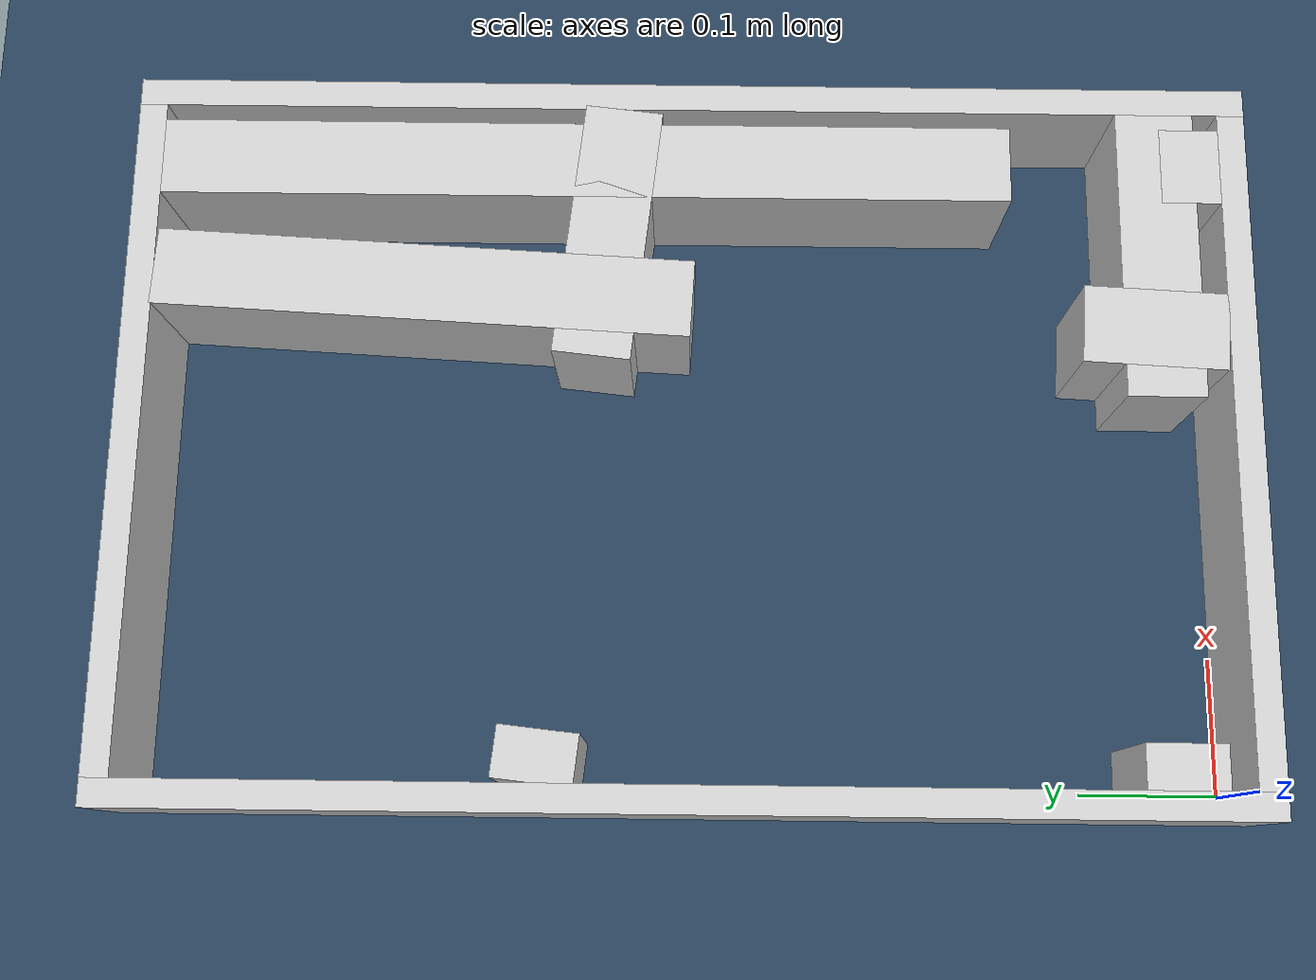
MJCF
<?xml version="1.0" ?>
<mujoco model="generated_real_template">
  <compiler angle="degree"/>
  <option timestep="0.002" integrator="implicitfast" iterations="100" cone="elliptic"/>
  <default>
    <geom density="1"/>
  </default>
  <asset>
    <texture builtin="gradient" height="3072" rgb1="0.3 0.5 0.7" rgb2="0 0 0" type="skybox" width="512"/>
    <texture builtin="checker" height="300" mark="edge" markrgb="0.8 0.8 0.8" name="groundplane" rgb1="0.2 0.3 0.4" rgb2="0.1 0.2 0.3" type="2d" width="300"/>
    <material name="groundplane" reflectance="0.2" texrepeat="5 5" texture="groundplane" texuniform="true"/>
  </asset>
  <worldbody>
    <light dir="0 0 -1" directional="true" pos="0 0 1.5"/>
    <geom name="floor" type="plane" condim="4" friction="0.5 0.005 0.001" material="groundplane" size="0 0 0.05"/>
    <body name="walls">
      <geom name="wall_boundary_left" type="box" condim="4" friction="1.0 0.005 0.0001" rgba="0.8 0.8 0.8 1" pos="-0.010000 0.387500 0.050000" euler="0 0 0.000000" size="0.010000 0.407500 0.050000"/>
      <geom name="wall_boundary_right" type="box" condim="4" friction="1.0 0.005 0.0001" rgba="0.8 0.8 0.8 1" pos="0.500000 0.387500 0.050000" euler="0 0 0.000000" size="0.010000 0.407500 0.050000"/>
      <geom name="wall_boundary_bottom" type="box" condim="4" friction="1.0 0.005 0.0001" rgba="0.8 0.8 0.8 1" pos="0.245000 -0.010000 0.050000" euler="0 0 0.000000" size="0.245000 0.010000 0.050000"/>
      <geom name="wall_boundary_top" type="box" condim="4" friction="1.0 0.005 0.0001" rgba="0.8 0.8 0.8 1" pos="0.245000 0.785000 0.050000" euler="0 0 0.000000" size="0.245000 0.010000 0.050000"/>
      <geom name="wall_inner_1_1" type="box" condim="4" friction="1.0 0.005 0.0001" rgba="0.8 0.8 0.8 1" pos="0.018077 0.488414 0.050000" euler="0 0 -6.239835" size="0.018185 0.028500 0.050000"/>
      <geom name="wall_inner_1_2" type="box" condim="4" friction="1.0 0.005 0.0001" rgba="0.8 0.8 0.8 1" pos="0.395291 0.447170 0.050000" euler="0 0 -6.239835" size="0.095273 0.028500 0.050000"/>
      <geom name="wall_inner_2_1" type="box" condim="4" friction="1.0 0.005 0.0001" rgba="0.8 0.8 0.8 1" pos="0.326040 0.052081 0.050000" euler="0 0 86.953207" size="0.052155 0.028500 0.050000"/>
      <geom name="wall_inner_2_2" type="box" condim="4" friction="1.0 0.005 0.0001" rgba="0.8 0.8 0.8 1" pos="0.354143 0.580068 0.050000" euler="0 0 86.953207" size="0.195207 0.028500 0.050000"/>
      <geom name="wall_inner_3_1" type="box" condim="4" friction="1.0 0.005 0.0001" rgba="0.8 0.8 0.8 1" pos="0.015861 0.046646 0.050000" euler="0 0 0.000000" size="0.015861 0.028500 0.050000"/>
      <geom name="wall_inner_3_2" type="box" condim="4" friction="1.0 0.005 0.0001" rgba="0.8 0.8 0.8 1" pos="0.382347 0.046646 0.050000" euler="0 0 0.000000" size="0.107653 0.028500 0.050000"/>
      <geom name="wall_inner_4_1" type="box" condim="4" friction="1.0 0.005 0.0001" rgba="0.8 0.8 0.8 1" pos="0.449722 0.021674 0.050000" euler="0 0 90.000000" size="0.021674 0.028500 0.050000"/>
      <geom name="wall_inner_4_2" type="box" condim="4" friction="1.0 0.005 0.0001" rgba="0.8 0.8 0.8 1" pos="0.449722 0.464089 0.050000" euler="0 0 90.000000" size="0.310911 0.028500 0.050000"/>
    </body>
  </worldbody>
</mujoco>
